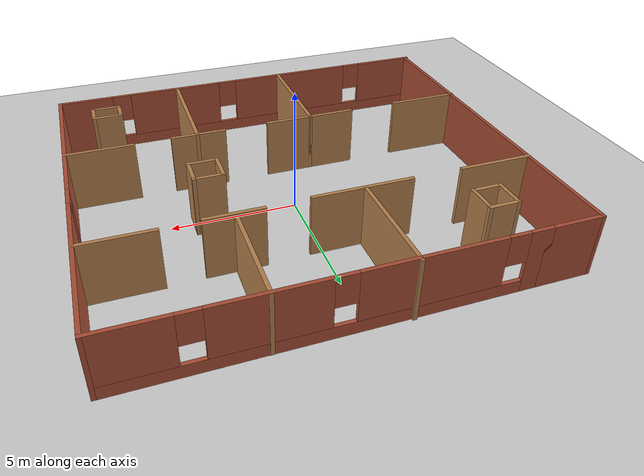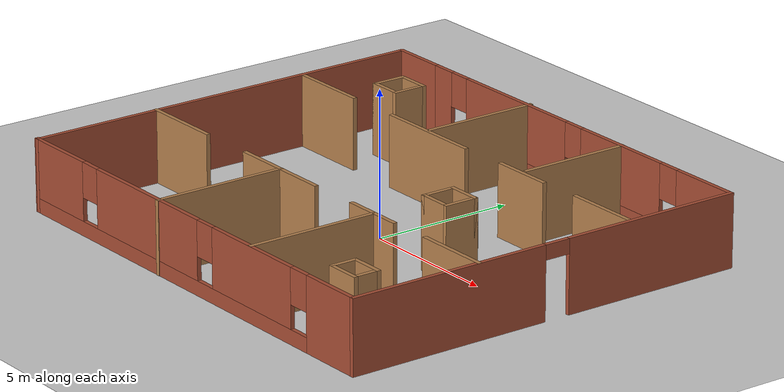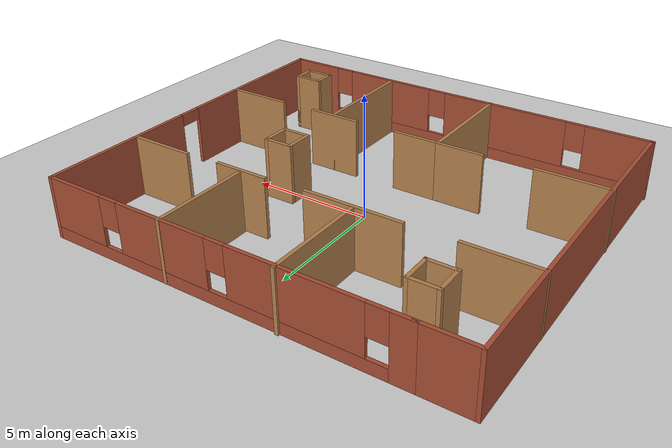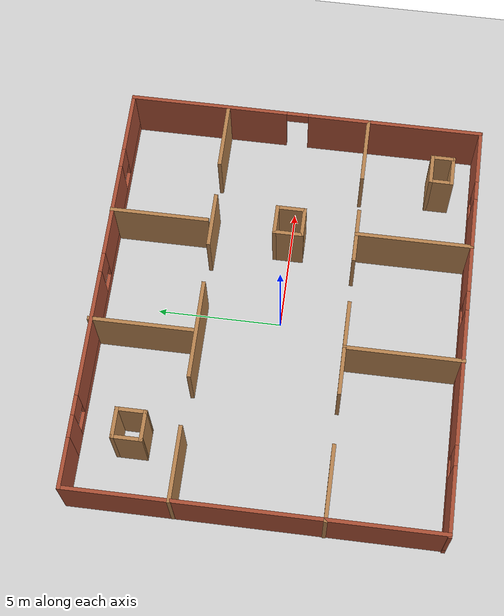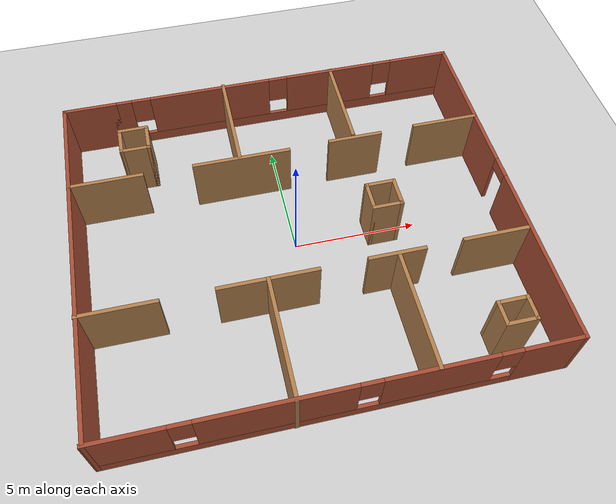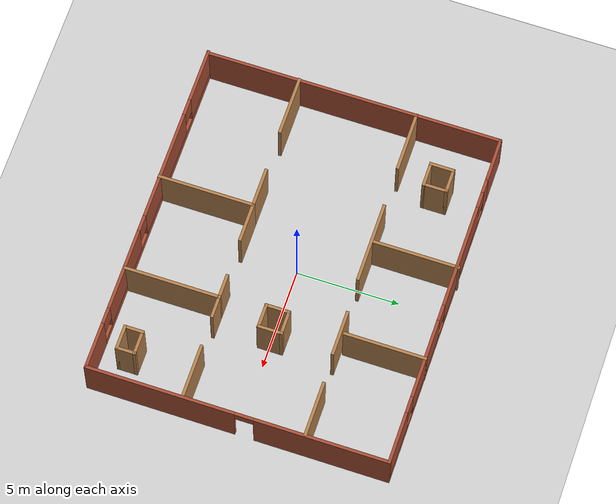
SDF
<?xml version="1.0"?>
<sdf version="1.7">
  <world name="default">

    <!-- Physics Settings (optional) -->
    <physics type="ode">
      <gravity>0 0 -9.8</gravity>
      <max_step_size>0.001</max_step_size>
    </physics>

    <!-- Ground Plane -->
    <model name="ground_plane">
      <pose>0 0 0 0 0 0</pose>
      <link name="link">
        <collision name="collision">
          <geometry>
            <plane>
              <normal>0 0 1</normal>
              <size>100 100</size>
            </plane>
          </geometry>
        </collision>
        <visual name="visual">
          <geometry>
            <plane>
              <normal>0 0 1</normal>
              <size>100 100</size>
            </plane>
          </geometry>
          <material>
            <ambient>0.3 0.3 0.3 1.0</ambient>
            <diffuse>0.8 0.8 0.8 1.0</diffuse>
            <specular>0.0 0.0 0.0 1.0</specular>
          </material>
        </visual>
      </link>
    </model>

    <!-- Add your building model -->
    <include>
      <uri>model://map5</uri> <!-- Reference to the model in Gazebo's model database -->
      <pose>0 0 0 0 0 0</pose> <!-- Position of the model in the world -->
    </include>

  </world>
</sdf>

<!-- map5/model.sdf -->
<sdf version='1.7'>
  <model name='map5'>
    <pose>0.278931 0.952723 0 0 -0 0</pose>
    <link name='Wall_12'>
      <collision name='Wall_12_Collision'>
        <geometry>
          <box>
            <size>3 0.15 2.5</size>
          </box>
        </geometry>
        <pose>0 0 1.25 0 -0 0</pose>
      </collision>
      <visual name='Wall_12_Visual'>
        <pose>0 0 1.25 0 -0 0</pose>
        <geometry>
          <box>
            <size>3 0.15 2.5</size>
          </box>
        </geometry>
        <material>
          <script>
            <uri>file://media/materials/scripts/gazebo.material</uri>
            <name>Gazebo/Wood</name>
          </script>
          <ambient>1 1 1 1</ambient>
        </material>
        <meta>
          <layer>0</layer>
        </meta>
      </visual>
      <pose>-7.00356 -2.71071 0 0 -0 0</pose>
    </link>
    <link name='Wall_21'>
      <collision name='Wall_21_Collision'>
        <geometry>
          <box>
            <size>2 0.15 2.5</size>
          </box>
        </geometry>
        <pose>0 0 1.25 0 -0 0</pose>
      </collision>
      <visual name='Wall_21_Visual'>
        <pose>0 0 1.25 0 -0 0</pose>
        <geometry>
          <box>
            <size>2 0.15 2.5</size>
          </box>
        </geometry>
        <material>
          <script>
            <uri>file://media/materials/scripts/gazebo.material</uri>
            <name>Gazebo/Wood</name>
          </script>
          <ambient>1 1 1 1</ambient>
        </material>
        <meta>
          <layer>0</layer>
        </meta>
      </visual>
      <pose>-2.52879 -2.68245 0 0 -0 0</pose>
    </link>
    <link name='Wall_22'>
      <collision name='Wall_22_Collision'>
        <geometry>
          <box>
            <size>4.75 0.15 2.5</size>
          </box>
        </geometry>
        <pose>0 0 1.25 0 -0 0</pose>
      </collision>
      <visual name='Wall_22_Visual'>
        <pose>0 0 1.25 0 -0 0</pose>
        <geometry>
          <box>
            <size>4.75 0.15 2.5</size>
          </box>
        </geometry>
        <material>
          <script>
            <uri>file://media/materials/scripts/gazebo.material</uri>
            <name>Gazebo/Wood</name>
          </script>
          <ambient>1 1 1 1</ambient>
        </material>
        <meta>
          <layer>0</layer>
        </meta>
      </visual>
      <pose>-1.60379 -4.98245 0 0 -0 -1.5708</pose>
    </link>
    <link name='Wall_24'>
      <collision name='Wall_24_Collision'>
        <geometry>
          <box>
            <size>2 0.15 2.5</size>
          </box>
        </geometry>
        <pose>0 0 1.25 0 -0 0</pose>
      </collision>
      <visual name='Wall_24_Visual'>
        <pose>0 0 1.25 0 -0 0</pose>
        <geometry>
          <box>
            <size>2 0.15 2.5</size>
          </box>
        </geometry>
        <material>
          <script>
            <uri>file://media/materials/scripts/gazebo.material</uri>
            <name>Gazebo/Wood</name>
          </script>
          <ambient>1 1 1 1</ambient>
        </material>
        <meta>
          <layer>0</layer>
        </meta>
      </visual>
      <pose>-0.678793 -2.68245 0 0 -0 0</pose>
    </link>
    <link name='Wall_26'>
      <collision name='Wall_26_Collision'>
        <geometry>
          <box>
            <size>2.75 0.15 2.5</size>
          </box>
        </geometry>
        <pose>0 0 1.25 0 -0 0</pose>
      </collision>
      <visual name='Wall_26_Visual'>
        <pose>0 0 1.25 0 -0 0</pose>
        <geometry>
          <box>
            <size>2.75 0.15 2.5</size>
          </box>
        </geometry>
        <material>
          <script>
            <uri>file://media/materials/scripts/gazebo.material</uri>
            <name>Gazebo/Wood</name>
          </script>
          <ambient>1 1 1 1</ambient>
        </material>
        <meta>
          <layer>0</layer>
        </meta>
      </visual>
      <pose>7.14608 -2.62591 0 0 -0 3.14159</pose>
    </link>
    <link name='Wall_28'>
      <collision name='Wall_28_Collision'>
        <geometry>
          <box>
            <size>2.25 0.15 2.5</size>
          </box>
        </geometry>
        <pose>0 0 1.25 0 -0 0</pose>
      </collision>
      <visual name='Wall_28_Visual'>
        <pose>0 0 1.25 0 -0 0</pose>
        <geometry>
          <box>
            <size>2.25 0.15 2.5</size>
          </box>
        </geometry>
        <material>
          <script>
            <uri>file://media/materials/scripts/gazebo.material</uri>
            <name>Gazebo/Wood</name>
          </script>
          <ambient>1 1 1 1</ambient>
        </material>
        <meta>
          <layer>0</layer>
        </meta>
      </visual>
      <pose>3.22109 -2.65418 0 0 -0 0</pose>
    </link>
    <link name='Wall_30'>
      <collision name='Wall_30_Collision'>
        <geometry>
          <box>
            <size>4.75 0.15 2.5</size>
          </box>
        </geometry>
        <pose>0 0 1.25 0 -0 0</pose>
      </collision>
      <visual name='Wall_30_Visual'>
        <pose>0 0 1.25 0 -0 0</pose>
        <geometry>
          <box>
            <size>4.75 0.15 2.5</size>
          </box>
        </geometry>
        <material>
          <script>
            <uri>file://media/materials/scripts/gazebo.material</uri>
            <name>Gazebo/Wood</name>
          </script>
          <ambient>1 1 1 1</ambient>
        </material>
        <meta>
          <layer>0</layer>
        </meta>
      </visual>
      <pose>3.27345 -4.95418 0 0 -0 -1.5708</pose>
    </link>
    <link name='Wall_32'>
      <collision name='Wall_32_Collision'>
        <geometry>
          <box>
            <size>3 0.15 2.5</size>
          </box>
        </geometry>
        <pose>0 0 1.25 0 -0 0</pose>
      </collision>
      <visual name='Wall_32_Visual'>
        <pose>0 0 1.25 0 -0 0</pose>
        <geometry>
          <box>
            <size>3 0.15 2.5</size>
          </box>
        </geometry>
        <material>
          <script>
            <uri>file://media/materials/scripts/gazebo.material</uri>
            <name>Gazebo/Wood</name>
          </script>
          <ambient>1 1 1 1</ambient>
        </material>
        <meta>
          <layer>0</layer>
        </meta>
      </visual>
      <pose>-6.98209 3.08922 0 0 -0 0</pose>
    </link>
    <link name='Wall_34'>
      <collision name='Wall_34_Collision'>
        <geometry>
          <box>
            <size>4 0.15 2.5</size>
          </box>
        </geometry>
        <pose>0 0 1.25 0 -0 0</pose>
      </collision>
      <visual name='Wall_34_Visual'>
        <pose>0 0 1.25 0 -0 0</pose>
        <geometry>
          <box>
            <size>4 0.15 2.5</size>
          </box>
        </geometry>
        <material>
          <script>
            <uri>file://media/materials/scripts/gazebo.material</uri>
            <name>Gazebo/Wood</name>
          </script>
          <ambient>1 1 1 1</ambient>
        </material>
        <meta>
          <layer>0</layer>
        </meta>
      </visual>
      <pose>-1.54124 3.08922 0 0 -0 0</pose>
    </link>
    <link name='Wall_36'>
      <collision name='Wall_36_Collision'>
        <geometry>
          <box>
            <size>2.25 0.15 2.5</size>
          </box>
        </geometry>
        <pose>0 0 1.25 0 -0 0</pose>
      </collision>
      <visual name='Wall_36_Visual'>
        <pose>0 0 1.25 0 -0 0</pose>
        <geometry>
          <box>
            <size>2.25 0.15 2.5</size>
          </box>
        </geometry>
        <material>
          <script>
            <uri>file://media/materials/scripts/gazebo.material</uri>
            <name>Gazebo/Wood</name>
          </script>
          <ambient>1 1 1 1</ambient>
        </material>
        <meta>
          <layer>0</layer>
        </meta>
      </visual>
      <pose>3.20723 3.15423 0 0 -0 0</pose>
    </link>
    <link name='Wall_38'>
      <collision name='Wall_38_Collision'>
        <geometry>
          <box>
            <size>2.75 0.15 2.5</size>
          </box>
        </geometry>
        <pose>0 0 1.25 0 -0 0</pose>
      </collision>
      <visual name='Wall_38_Visual'>
        <pose>0 0 1.25 0 -0 0</pose>
        <geometry>
          <box>
            <size>2.75 0.15 2.5</size>
          </box>
        </geometry>
        <material>
          <script>
            <uri>file://media/materials/scripts/gazebo.material</uri>
            <name>Gazebo/Wood</name>
          </script>
          <ambient>1 1 1 1</ambient>
        </material>
        <meta>
          <layer>0</layer>
        </meta>
      </visual>
      <pose>7.0983 3.21925 0 0 -0 3.14159</pose>
    </link>
    <link name='Wall_4'>
      <pose>1.02472 7.20559 0 0 -0 0</pose>
      <visual name='Wall_4_Visual_0'>
        <pose>-7.05688 0 1.25 0 -0 0</pose>
        <geometry>
          <box>
            <size>0.886244 0.15 2.5</size>
          </box>
        </geometry>
        <material>
          <script>
            <uri>file://media/materials/scripts/gazebo.material</uri>
            <name>Gazebo/Bricks</name>
          </script>
          <ambient>1 1 1 1</ambient>
        </material>
        <meta>
          <layer>0</layer>
        </meta>
      </visual>
      <collision name='Wall_4_Collision_0'>
        <geometry>
          <box>
            <size>0.886244 0.15 2.5</size>
          </box>
        </geometry>
        <pose>-7.05688 0 1.25 0 -0 0</pose>
      </collision>
      <visual name='Wall_4_Visual_1'>
        <pose>0.443122 0 0.25 0 -0 0</pose>
        <geometry>
          <box>
            <size>14.1138 0.15 0.5</size>
          </box>
        </geometry>
        <material>
          <script>
            <uri>file://media/materials/scripts/gazebo.material</uri>
            <name>Gazebo/Bricks</name>
          </script>
          <ambient>1 1 1 1</ambient>
        </material>
        <meta>
          <layer>0</layer>
        </meta>
      </visual>
      <collision name='Wall_4_Collision_1'>
        <geometry>
          <box>
            <size>14.1138 0.15 0.5</size>
          </box>
        </geometry>
        <pose>0.443122 0 0.25 0 -0 0</pose>
      </collision>
      <visual name='Wall_4_Visual_2'>
        <pose>-3.22324 0 1.5 0 -0 0</pose>
        <geometry>
          <box>
            <size>5.18103 0.15 2</size>
          </box>
        </geometry>
        <material>
          <script>
            <uri>file://media/materials/scripts/gazebo.material</uri>
            <name>Gazebo/Bricks</name>
          </script>
          <ambient>1 1 1 1</ambient>
        </material>
        <meta>
          <layer>0</layer>
        </meta>
      </visual>
      <collision name='Wall_4_Collision_2'>
        <geometry>
          <box>
            <size>5.18103 0.15 2</size>
          </box>
        </geometry>
        <pose>-3.22324 0 1.5 0 -0 0</pose>
      </collision>
      <visual name='Wall_4_Visual_3'>
        <pose>2.14018 0 1.5 0 -0 0</pose>
        <geometry>
          <box>
            <size>3.94582 0.15 2</size>
          </box>
        </geometry>
        <material>
          <script>
            <uri>file://media/materials/scripts/gazebo.material</uri>
            <name>Gazebo/Bricks</name>
          </script>
          <ambient>1 1 1 1</ambient>
        </material>
        <meta>
          <layer>0</layer>
        </meta>
      </visual>
      <collision name='Wall_4_Collision_3'>
        <geometry>
          <box>
            <size>3.94582 0.15 2</size>
          </box>
        </geometry>
        <pose>2.14018 0 1.5 0 -0 0</pose>
      </collision>
      <visual name='Wall_4_Visual_4'>
        <pose>6.20655 0 1.5 0 -0 0</pose>
        <geometry>
          <box>
            <size>2.58691 0.15 2</size>
          </box>
        </geometry>
        <material>
          <script>
            <uri>file://media/materials/scripts/gazebo.material</uri>
            <name>Gazebo/Bricks</name>
          </script>
          <ambient>1 1 1 1</ambient>
        </material>
        <meta>
          <layer>0</layer>
        </meta>
      </visual>
      <collision name='Wall_4_Collision_4'>
        <geometry>
          <box>
            <size>2.58691 0.15 2</size>
          </box>
        </geometry>
        <pose>6.20655 0 1.5 0 -0 0</pose>
      </collision>
      <visual name='Wall_4_Visual_5'>
        <pose>-6.21376 0 1.9 0 -0 0</pose>
        <geometry>
          <box>
            <size>0.8 0.15 1.2</size>
          </box>
        </geometry>
        <material>
          <script>
            <uri>file://media/materials/scripts/gazebo.material</uri>
            <name>Gazebo/Bricks</name>
          </script>
          <ambient>1 1 1 1</ambient>
        </material>
        <meta>
          <layer>0</layer>
        </meta>
      </visual>
      <collision name='Wall_4_Collision_5'>
        <geometry>
          <box>
            <size>0.8 0.15 1.2</size>
          </box>
        </geometry>
        <pose>-6.21376 0 1.9 0 -0 0</pose>
      </collision>
      <visual name='Wall_4_Visual_6'>
        <pose>-0.232727 0 1.9 0 -0 0</pose>
        <geometry>
          <box>
            <size>0.8 0.15 1.2</size>
          </box>
        </geometry>
        <material>
          <script>
            <uri>file://media/materials/scripts/gazebo.material</uri>
            <name>Gazebo/Bricks</name>
          </script>
          <ambient>1 1 1 1</ambient>
        </material>
        <meta>
          <layer>0</layer>
        </meta>
      </visual>
      <collision name='Wall_4_Collision_6'>
        <geometry>
          <box>
            <size>0.8 0.15 1.2</size>
          </box>
        </geometry>
        <pose>-0.232727 0 1.9 0 -0 0</pose>
      </collision>
      <visual name='Wall_4_Visual_7'>
        <pose>4.51309 0 1.9 0 -0 0</pose>
        <geometry>
          <box>
            <size>0.8 0.15 1.2</size>
          </box>
        </geometry>
        <material>
          <script>
            <uri>file://media/materials/scripts/gazebo.material</uri>
            <name>Gazebo/Bricks</name>
          </script>
          <ambient>1 1 1 1</ambient>
        </material>
        <meta>
          <layer>0</layer>
        </meta>
      </visual>
      <collision name='Wall_4_Collision_7'>
        <geometry>
          <box>
            <size>0.8 0.15 1.2</size>
          </box>
        </geometry>
        <pose>4.51309 0 1.9 0 -0 0</pose>
      </collision>
    </link>
    <link name='Wall_40'>
      <collision name='Wall_40_Collision'>
        <geometry>
          <box>
            <size>4.25 0.15 2.5</size>
          </box>
        </geometry>
        <pose>0 0 1.25 0 -0 0</pose>
      </collision>
      <visual name='Wall_40_Visual'>
        <pose>0 0 1.25 0 -0 0</pose>
        <geometry>
          <box>
            <size>4.25 0.15 2.5</size>
          </box>
        </geometry>
        <material>
          <script>
            <uri>file://media/materials/scripts/gazebo.material</uri>
            <name>Gazebo/Wood</name>
          </script>
          <ambient>1 1 1 1</ambient>
        </material>
        <meta>
          <layer>0</layer>
        </meta>
      </visual>
      <pose>-1.61342 5.23245 0 0 -0 -1.5708</pose>
    </link>
    <link name='Wall_42'>
      <collision name='Wall_42_Collision'>
        <geometry>
          <box>
            <size>4 0.15 2.5</size>
          </box>
        </geometry>
        <pose>0 0 1.25 0 -0 0</pose>
      </collision>
      <visual name='Wall_42_Visual'>
        <pose>0 0 1.25 0 -0 0</pose>
        <geometry>
          <box>
            <size>4 0.15 2.5</size>
          </box>
        </geometry>
        <material>
          <script>
            <uri>file://media/materials/scripts/gazebo.material</uri>
            <name>Gazebo/Wood</name>
          </script>
          <ambient>1 1 1 1</ambient>
        </material>
        <meta>
          <layer>0</layer>
        </meta>
      </visual>
      <pose>3.1649 5.29243 0 0 -0 -1.5708</pose>
    </link>
    <link name='Wall_5'>
      <pose>8.44972 -0.028084 0 0 -0 -1.5708</pose>
      <visual name='Wall_5_Visual_0'>
        <pose>-4.05659 0 1.25 0 -0 0</pose>
        <geometry>
          <box>
            <size>6.50451 0.15 2.5</size>
          </box>
        </geometry>
        <material>
          <script>
            <uri>file://media/materials/scripts/gazebo.material</uri>
            <name>Gazebo/Bricks</name>
          </script>
          <ambient>1 1 1 1</ambient>
        </material>
        <meta>
          <layer>0</layer>
        </meta>
      </visual>
      <collision name='Wall_5_Collision_0'>
        <geometry>
          <box>
            <size>6.50451 0.15 2.5</size>
          </box>
        </geometry>
        <pose>-4.05659 0 1.25 0 -0 0</pose>
      </collision>
      <visual name='Wall_5_Visual_1'>
        <pose>3.70225 0 1.25 0 -0 0</pose>
        <geometry>
          <box>
            <size>7.21317 0.15 2.5</size>
          </box>
        </geometry>
        <material>
          <script>
            <uri>file://media/materials/scripts/gazebo.material</uri>
            <name>Gazebo/Bricks</name>
          </script>
          <ambient>1 1 1 1</ambient>
        </material>
        <meta>
          <layer>0</layer>
        </meta>
      </visual>
      <collision name='Wall_5_Collision_1'>
        <geometry>
          <box>
            <size>7.21317 0.15 2.5</size>
          </box>
        </geometry>
        <pose>3.70225 0 1.25 0 -0 0</pose>
      </collision>
      <visual name='Wall_5_Visual_2'>
        <pose>-0.354333 0 2.25 0 -0 0</pose>
        <geometry>
          <box>
            <size>0.9 0.15 0.5</size>
          </box>
        </geometry>
        <material>
          <script>
            <uri>file://media/materials/scripts/gazebo.material</uri>
            <name>Gazebo/Bricks</name>
          </script>
          <ambient>1 1 1 1</ambient>
        </material>
        <meta>
          <layer>0</layer>
        </meta>
      </visual>
      <collision name='Wall_5_Collision_2'>
        <geometry>
          <box>
            <size>0.9 0.15 0.5</size>
          </box>
        </geometry>
        <pose>-0.354333 0 2.25 0 -0 0</pose>
      </collision>
    </link>
    <link name='Wall_50'>
      <collision name='Wall_50_Collision'>
        <geometry>
          <box>
            <size>1.25 0.15 2.5</size>
          </box>
        </geometry>
        <pose>0 0 1.25 0 -0 0</pose>
      </collision>
      <visual name='Wall_50_Visual'>
        <pose>0 0 1.25 0 -0 0</pose>
        <geometry>
          <box>
            <size>1.25 0.15 2.5</size>
          </box>
        </geometry>
        <material>
          <script>
            <uri>file://media/materials/scripts/gazebo.material</uri>
            <name>Gazebo/Wood</name>
          </script>
          <ambient>1 1 1 1</ambient>
        </material>
        <meta>
          <layer>0</layer>
        </meta>
      </visual>
      <pose>-6.22922 5.04216 0 0 -0 -1.5708</pose>
    </link>
    <link name='Wall_51'>
      <collision name='Wall_51_Collision'>
        <geometry>
          <box>
            <size>1.25 0.15 2.5</size>
          </box>
        </geometry>
        <pose>0 0 1.25 0 -0 0</pose>
      </collision>
      <visual name='Wall_51_Visual'>
        <pose>0 0 1.25 0 -0 0</pose>
        <geometry>
          <box>
            <size>1.25 0.15 2.5</size>
          </box>
        </geometry>
        <material>
          <script>
            <uri>file://media/materials/scripts/gazebo.material</uri>
            <name>Gazebo/Wood</name>
          </script>
          <ambient>1 1 1 1</ambient>
        </material>
        <meta>
          <layer>0</layer>
        </meta>
      </visual>
      <pose>-5.67922 4.49216 0 0 -0 0</pose>
    </link>
    <link name='Wall_52'>
      <collision name='Wall_52_Collision'>
        <geometry>
          <box>
            <size>1.25 0.15 2.5</size>
          </box>
        </geometry>
        <pose>0 0 1.25 0 -0 0</pose>
      </collision>
      <visual name='Wall_52_Visual'>
        <pose>0 0 1.25 0 -0 0</pose>
        <geometry>
          <box>
            <size>1.25 0.15 2.5</size>
          </box>
        </geometry>
        <material>
          <script>
            <uri>file://media/materials/scripts/gazebo.material</uri>
            <name>Gazebo/Wood</name>
          </script>
          <ambient>1 1 1 1</ambient>
        </material>
        <meta>
          <layer>0</layer>
        </meta>
      </visual>
      <pose>-5.12922 5.04216 0 0 -0 1.5708</pose>
    </link>
    <link name='Wall_53'>
      <collision name='Wall_53_Collision'>
        <geometry>
          <box>
            <size>1.25 0.15 2.5</size>
          </box>
        </geometry>
        <pose>0 0 1.25 0 -0 0</pose>
      </collision>
      <visual name='Wall_53_Visual'>
        <pose>0 0 1.25 0 -0 0</pose>
        <geometry>
          <box>
            <size>1.25 0.15 2.5</size>
          </box>
        </geometry>
        <material>
          <script>
            <uri>file://media/materials/scripts/gazebo.material</uri>
            <name>Gazebo/Wood</name>
          </script>
          <ambient>1 1 1 1</ambient>
        </material>
        <meta>
          <layer>0</layer>
        </meta>
      </visual>
      <pose>-5.67922 5.59215 0 0 -0 3.14159</pose>
    </link>
    <link name='Wall_55'>
      <collision name='Wall_55_Collision'>
        <geometry>
          <box>
            <size>1 0.15 2.5</size>
          </box>
        </geometry>
        <pose>0 0 1.25 0 -0 0</pose>
      </collision>
      <visual name='Wall_55_Visual'>
        <pose>0 0 1.25 0 -0 0</pose>
        <geometry>
          <box>
            <size>1 0.15 2.5</size>
          </box>
        </geometry>
        <material>
          <script>
            <uri>file://media/materials/scripts/gazebo.material</uri>
            <name>Gazebo/Wood</name>
          </script>
          <ambient>1 1 1 1</ambient>
        </material>
        <meta>
          <layer>0</layer>
        </meta>
      </visual>
      <pose>6.02539 -5.81973 0 0 -0 -1.5708</pose>
    </link>
    <link name='Wall_56'>
      <collision name='Wall_56_Collision'>
        <geometry>
          <box>
            <size>1.25 0.15 2.5</size>
          </box>
        </geometry>
        <pose>0 0 1.25 0 -0 0</pose>
      </collision>
      <visual name='Wall_56_Visual'>
        <pose>0 0 1.25 0 -0 0</pose>
        <geometry>
          <box>
            <size>1.25 0.15 2.5</size>
          </box>
        </geometry>
        <material>
          <script>
            <uri>file://media/materials/scripts/gazebo.material</uri>
            <name>Gazebo/Wood</name>
          </script>
          <ambient>1 1 1 1</ambient>
        </material>
        <meta>
          <layer>0</layer>
        </meta>
      </visual>
      <pose>6.57539 -6.24474 0 0 -0 0</pose>
    </link>
    <link name='Wall_57'>
      <collision name='Wall_57_Collision'>
        <geometry>
          <box>
            <size>1 0.15 2.5</size>
          </box>
        </geometry>
        <pose>0 0 1.25 0 -0 0</pose>
      </collision>
      <visual name='Wall_57_Visual'>
        <pose>0 0 1.25 0 -0 0</pose>
        <geometry>
          <box>
            <size>1 0.15 2.5</size>
          </box>
        </geometry>
        <material>
          <script>
            <uri>file://media/materials/scripts/gazebo.material</uri>
            <name>Gazebo/Wood</name>
          </script>
          <ambient>1 1 1 1</ambient>
        </material>
        <meta>
          <layer>0</layer>
        </meta>
      </visual>
      <pose>7.12539 -5.81973 0 0 -0 1.5708</pose>
    </link>
    <link name='Wall_58'>
      <collision name='Wall_58_Collision'>
        <geometry>
          <box>
            <size>1.25 0.15 2.5</size>
          </box>
        </geometry>
        <pose>0 0 1.25 0 -0 0</pose>
      </collision>
      <visual name='Wall_58_Visual'>
        <pose>0 0 1.25 0 -0 0</pose>
        <geometry>
          <box>
            <size>1.25 0.15 2.5</size>
          </box>
        </geometry>
        <material>
          <script>
            <uri>file://media/materials/scripts/gazebo.material</uri>
            <name>Gazebo/Wood</name>
          </script>
          <ambient>1 1 1 1</ambient>
        </material>
        <meta>
          <layer>0</layer>
        </meta>
      </visual>
      <pose>6.57539 -5.39473 0 0 -0 3.14159</pose>
    </link>
    <link name='Wall_6'>
      <pose>-0.024719 -7.26175 0 0 -0 3.14159</pose>
      <visual name='Wall_6_Visual_0'>
        <pose>-7.36128 0 1.25 0 -0 0</pose>
        <geometry>
          <box>
            <size>2.27743 0.15 2.5</size>
          </box>
        </geometry>
        <material>
          <script>
            <uri>file://media/materials/scripts/gazebo.material</uri>
            <name>Gazebo/Bricks</name>
          </script>
          <ambient>1 1 1 1</ambient>
        </material>
        <meta>
          <layer>0</layer>
        </meta>
      </visual>
      <collision name='Wall_6_Collision_0'>
        <geometry>
          <box>
            <size>2.27743 0.15 2.5</size>
          </box>
        </geometry>
        <pose>-7.36128 0 1.25 0 -0 0</pose>
      </collision>
      <visual name='Wall_6_Visual_1'>
        <pose>1.13871 0 0.25 0 -0 0</pose>
        <geometry>
          <box>
            <size>14.7226 0.15 0.5</size>
          </box>
        </geometry>
        <material>
          <script>
            <uri>file://media/materials/scripts/gazebo.material</uri>
            <name>Gazebo/Bricks</name>
          </script>
          <ambient>1 1 1 1</ambient>
        </material>
        <meta>
          <layer>0</layer>
        </meta>
      </visual>
      <collision name='Wall_6_Collision_1'>
        <geometry>
          <box>
            <size>14.7226 0.15 0.5</size>
          </box>
        </geometry>
        <pose>1.13871 0 0.25 0 -0 0</pose>
      </collision>
      <visual name='Wall_6_Visual_2'>
        <pose>-3.38465 0 1.5 0 -0 0</pose>
        <geometry>
          <box>
            <size>4.07584 0.15 2</size>
          </box>
        </geometry>
        <material>
          <script>
            <uri>file://media/materials/scripts/gazebo.material</uri>
            <name>Gazebo/Bricks</name>
          </script>
          <ambient>1 1 1 1</ambient>
        </material>
        <meta>
          <layer>0</layer>
        </meta>
      </visual>
      <collision name='Wall_6_Collision_2'>
        <geometry>
          <box>
            <size>4.07584 0.15 2</size>
          </box>
        </geometry>
        <pose>-3.38465 0 1.5 0 -0 0</pose>
      </collision>
      <visual name='Wall_6_Visual_3'>
        <pose>2.20631 0 1.5 0 -0 0</pose>
        <geometry>
          <box>
            <size>5.50608 0.15 2</size>
          </box>
        </geometry>
        <material>
          <script>
            <uri>file://media/materials/scripts/gazebo.material</uri>
            <name>Gazebo/Bricks</name>
          </script>
          <ambient>1 1 1 1</ambient>
        </material>
        <meta>
          <layer>0</layer>
        </meta>
      </visual>
      <collision name='Wall_6_Collision_3'>
        <geometry>
          <box>
            <size>5.50608 0.15 2</size>
          </box>
        </geometry>
        <pose>2.20631 0 1.5 0 -0 0</pose>
      </collision>
      <visual name='Wall_6_Visual_4'>
        <pose>7.12968 0 1.5 0 -0 0</pose>
        <geometry>
          <box>
            <size>2.74065 0.15 2</size>
          </box>
        </geometry>
        <material>
          <script>
            <uri>file://media/materials/scripts/gazebo.material</uri>
            <name>Gazebo/Bricks</name>
          </script>
          <ambient>1 1 1 1</ambient>
        </material>
        <meta>
          <layer>0</layer>
        </meta>
      </visual>
      <collision name='Wall_6_Collision_4'>
        <geometry>
          <box>
            <size>2.74065 0.15 2</size>
          </box>
        </geometry>
        <pose>7.12968 0 1.5 0 -0 0</pose>
      </collision>
      <visual name='Wall_6_Visual_5'>
        <pose>-5.82257 0 1.9 0 -0 0</pose>
        <geometry>
          <box>
            <size>0.8 0.15 1.2</size>
          </box>
        </geometry>
        <material>
          <script>
            <uri>file://media/materials/scripts/gazebo.material</uri>
            <name>Gazebo/Bricks</name>
          </script>
          <ambient>1 1 1 1</ambient>
        </material>
        <meta>
          <layer>0</layer>
        </meta>
      </visual>
      <collision name='Wall_6_Collision_5'>
        <geometry>
          <box>
            <size>0.8 0.15 1.2</size>
          </box>
        </geometry>
        <pose>-5.82257 0 1.9 0 -0 0</pose>
      </collision>
      <visual name='Wall_6_Visual_6'>
        <pose>-0.946732 0 1.9 0 -0 0</pose>
        <geometry>
          <box>
            <size>0.8 0.15 1.2</size>
          </box>
        </geometry>
        <material>
          <script>
            <uri>file://media/materials/scripts/gazebo.material</uri>
            <name>Gazebo/Bricks</name>
          </script>
          <ambient>1 1 1 1</ambient>
        </material>
        <meta>
          <layer>0</layer>
        </meta>
      </visual>
      <collision name='Wall_6_Collision_6'>
        <geometry>
          <box>
            <size>0.8 0.15 1.2</size>
          </box>
        </geometry>
        <pose>-0.946732 0 1.9 0 -0 0</pose>
      </collision>
      <visual name='Wall_6_Visual_7'>
        <pose>5.35935 0 1.9 0 -0 0</pose>
        <geometry>
          <box>
            <size>0.8 0.15 1.2</size>
          </box>
        </geometry>
        <material>
          <script>
            <uri>file://media/materials/scripts/gazebo.material</uri>
            <name>Gazebo/Bricks</name>
          </script>
          <ambient>1 1 1 1</ambient>
        </material>
        <meta>
          <layer>0</layer>
        </meta>
      </visual>
      <collision name='Wall_6_Collision_7'>
        <geometry>
          <box>
            <size>0.8 0.15 1.2</size>
          </box>
        </geometry>
        <pose>5.35935 0 1.9 0 -0 0</pose>
      </collision>
    </link>
    <link name='Wall_60'>
      <collision name='Wall_60_Collision'>
        <geometry>
          <box>
            <size>1.25 0.15 2.5</size>
          </box>
        </geometry>
        <pose>0 0 1.25 0 -0 0</pose>
      </collision>
      <visual name='Wall_60_Visual'>
        <pose>0 0 1.25 0 -0 0</pose>
        <geometry>
          <box>
            <size>1.25 0.15 2.5</size>
          </box>
        </geometry>
        <material>
          <script>
            <uri>file://media/materials/scripts/gazebo.material</uri>
            <name>Gazebo/Wood</name>
          </script>
          <ambient>1 1 1 1</ambient>
        </material>
        <meta>
          <layer>0</layer>
        </meta>
      </visual>
      <pose>2.96987 0.068799 0 0 -0 -1.5708</pose>
    </link>
    <link name='Wall_61'>
      <collision name='Wall_61_Collision'>
        <geometry>
          <box>
            <size>1.25 0.15 2.5</size>
          </box>
        </geometry>
        <pose>0 0 1.25 0 -0 0</pose>
      </collision>
      <visual name='Wall_61_Visual'>
        <pose>0 0 1.25 0 -0 0</pose>
        <geometry>
          <box>
            <size>1.25 0.15 2.5</size>
          </box>
        </geometry>
        <material>
          <script>
            <uri>file://media/materials/scripts/gazebo.material</uri>
            <name>Gazebo/Wood</name>
          </script>
          <ambient>1 1 1 1</ambient>
        </material>
        <meta>
          <layer>0</layer>
        </meta>
      </visual>
      <pose>3.51987 -0.481201 0 0 -0 0</pose>
    </link>
    <link name='Wall_62'>
      <collision name='Wall_62_Collision'>
        <geometry>
          <box>
            <size>1.25 0.15 2.5</size>
          </box>
        </geometry>
        <pose>0 0 1.25 0 -0 0</pose>
      </collision>
      <visual name='Wall_62_Visual'>
        <pose>0 0 1.25 0 -0 0</pose>
        <geometry>
          <box>
            <size>1.25 0.15 2.5</size>
          </box>
        </geometry>
        <material>
          <script>
            <uri>file://media/materials/scripts/gazebo.material</uri>
            <name>Gazebo/Wood</name>
          </script>
          <ambient>1 1 1 1</ambient>
        </material>
        <meta>
          <layer>0</layer>
        </meta>
      </visual>
      <pose>4.06987 0.068799 0 0 -0 1.5708</pose>
    </link>
    <link name='Wall_63'>
      <collision name='Wall_63_Collision'>
        <geometry>
          <box>
            <size>1.25 0.15 2.5</size>
          </box>
        </geometry>
        <pose>0 0 1.25 0 -0 0</pose>
      </collision>
      <visual name='Wall_63_Visual'>
        <pose>0 0 1.25 0 -0 0</pose>
        <geometry>
          <box>
            <size>1.25 0.15 2.5</size>
          </box>
        </geometry>
        <material>
          <script>
            <uri>file://media/materials/scripts/gazebo.material</uri>
            <name>Gazebo/Wood</name>
          </script>
          <ambient>1 1 1 1</ambient>
        </material>
        <meta>
          <layer>0</layer>
        </meta>
      </visual>
      <pose>3.51987 0.618799 0 0 -0 3.14159</pose>
    </link>
    <link name='Wall_7'>
      <collision name='Wall_7_Collision'>
        <geometry>
          <box>
            <size>14.6177 0.15 2.5</size>
          </box>
        </geometry>
        <pose>0 0 1.25 0 -0 0</pose>
      </collision>
      <visual name='Wall_7_Visual'>
        <pose>0 0 1.25 0 -0 0</pose>
        <geometry>
          <box>
            <size>14.6177 0.15 2.5</size>
          </box>
        </geometry>
        <material>
          <script>
            <uri>file://media/materials/scripts/gazebo.material</uri>
            <name>Gazebo/Bricks</name>
          </script>
          <ambient>1 1 1 1</ambient>
        </material>
        <meta>
          <layer>0</layer>
        </meta>
      </visual>
      <pose>-8.40028 -0.028084 0 0 -0 1.5708</pose>
    </link>
    <link name='Wall_8'>
      <collision name='Wall_8_Collision'>
        <geometry>
          <box>
            <size>2.25 0.15 2.5</size>
          </box>
        </geometry>
        <pose>0 0 1.25 0 -0 0</pose>
      </collision>
      <visual name='Wall_8_Visual'>
        <pose>0 0 1.25 0 -0 0</pose>
        <geometry>
          <box>
            <size>2.25 0.15 2.5</size>
          </box>
        </geometry>
        <material>
          <script>
            <uri>file://media/materials/scripts/gazebo.material</uri>
            <name>Gazebo/Bricks</name>
          </script>
          <ambient>1 1 1 1</ambient>
        </material>
        <meta>
          <layer>0</layer>
        </meta>
      </visual>
      <pose>-7.35028 7.20559 0 0 -0 0</pose>
    </link>
    <static>1</static>
  </model>
</sdf>
